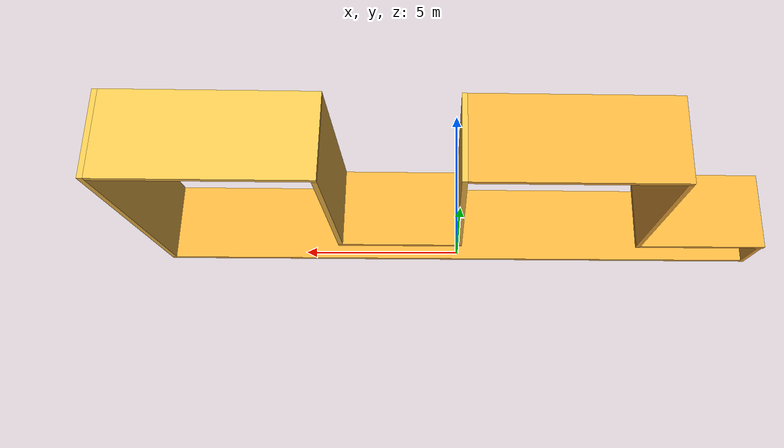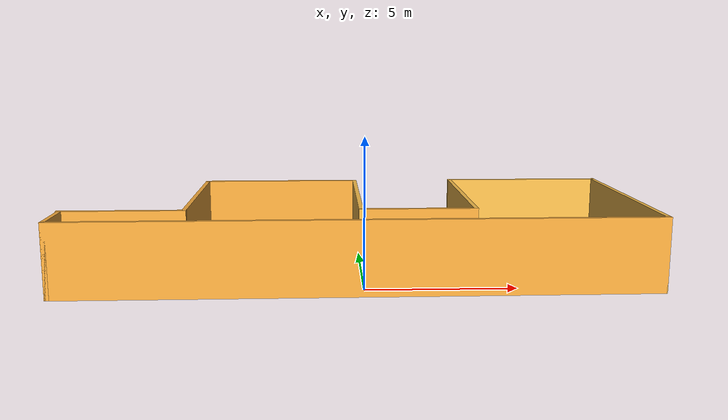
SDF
<?xml version='1.0'?>
<sdf version='1.7'>
  <model name='map4_level4'>
    <pose>-0.192035 3.19463 0 0 -0 0</pose>
    <link name='Wall_16'>
      <collision name='Wall_16_Collision'>
        <geometry>
          <box>
            <size>1.75 0.15 2.5</size>
          </box>
        </geometry>
        <pose>0 0 1.25 0 -0 0</pose>
      </collision>
      <visual name='Wall_16_Visual'>
        <pose>0 0 1.25 0 -0 0</pose>
        <geometry>
          <box>
            <size>1.75 0.15 2.5</size>
          </box>
        </geometry>
        <material>
          <script>
            <uri>file://media/materials/scripts/gazebo.material</uri>
            <name>Gazebo/Grey</name>
          </script>
          <ambient>0.988235 0.686275 0.243137 1</ambient>
        </material>
        <meta>
          <layer>0</layer>
        </meta>
      </visual>
      <pose>-9.775 -3.125 0 0 -0 -1.5708</pose>
    </link>
    <link name='Wall_17'>
      <collision name='Wall_17_Collision'>
        <geometry>
          <box>
            <size>19.75 0.15 2.5</size>
          </box>
        </geometry>
        <pose>0 0 1.25 0 -0 0</pose>
      </collision>
      <visual name='Wall_17_Visual'>
        <pose>0 0 1.25 0 -0 0</pose>
        <geometry>
          <box>
            <size>19.75 0.15 2.5</size>
          </box>
        </geometry>
        <material>
          <script>
            <uri>file://media/materials/scripts/gazebo.material</uri>
            <name>Gazebo/Grey</name>
          </script>
          <ambient>0.988235 0.686275 0.243137 1</ambient>
        </material>
        <meta>
          <layer>0</layer>
        </meta>
      </visual>
      <pose>0.025 -3.925 0 0 -0 0</pose>
    </link>
    <link name='Wall_20'>
      <collision name='Wall_20_Collision'>
        <geometry>
          <box>
            <size>8 0.15 2.5</size>
          </box>
        </geometry>
        <pose>0 0 1.25 0 -0 0</pose>
      </collision>
      <visual name='Wall_20_Visual'>
        <pose>0 0 1.25 0 -0 0</pose>
        <geometry>
          <box>
            <size>8 0.15 2.5</size>
          </box>
        </geometry>
        <material>
          <script>
            <uri>file://media/materials/scripts/gazebo.material</uri>
            <name>Gazebo/Grey</name>
          </script>
          <ambient>1 0.764706 0.305882 1</ambient>
        </material>
        <meta>
          <layer>0</layer>
        </meta>
      </visual>
      <pose>9.825 -0 0 0 -0 1.5708</pose>
    </link>
    <link name='Wall_21'>
      <collision name='Wall_21_Collision'>
        <geometry>
          <box>
            <size>6 0.15 2.5</size>
          </box>
        </geometry>
        <pose>0 0 1.25 0 -0 0</pose>
      </collision>
      <visual name='Wall_21_Visual'>
        <pose>0 0 1.25 0 -0 0</pose>
        <geometry>
          <box>
            <size>6 0.15 2.5</size>
          </box>
        </geometry>
        <material>
          <script>
            <uri>file://media/materials/scripts/gazebo.material</uri>
            <name>Gazebo/Grey</name>
          </script>
          <ambient>1 0.764706 0.305882 1</ambient>
        </material>
        <meta>
          <layer>0</layer>
        </meta>
      </visual>
      <pose>6.9 3.925 0 0 -0 3.14159</pose>
    </link>
    <link name='Wall_22'>
      <collision name='Wall_22_Collision'>
        <geometry>
          <box>
            <size>6.25 0.15 2.5</size>
          </box>
        </geometry>
        <pose>0 0 1.25 0 -0 0</pose>
      </collision>
      <visual name='Wall_22_Visual'>
        <pose>0 0 1.25 0 -0 0</pose>
        <geometry>
          <box>
            <size>6.25 0.15 2.5</size>
          </box>
        </geometry>
        <material>
          <script>
            <uri>file://media/materials/scripts/gazebo.material</uri>
            <name>Gazebo/Grey</name>
          </script>
          <ambient>1 0.764706 0.305882 1</ambient>
        </material>
        <meta>
          <layer>0</layer>
        </meta>
      </visual>
      <pose>3.975 0.875 0 0 -0 -1.5708</pose>
    </link>
    <link name='Wall_23'>
      <collision name='Wall_23_Collision'>
        <geometry>
          <box>
            <size>4 0.15 2.5</size>
          </box>
        </geometry>
        <pose>0 0 1.25 0 -0 0</pose>
      </collision>
      <visual name='Wall_23_Visual'>
        <pose>0 0 1.25 0 -0 0</pose>
        <geometry>
          <box>
            <size>4 0.15 2.5</size>
          </box>
        </geometry>
        <material>
          <script>
            <uri>file://media/materials/scripts/gazebo.material</uri>
            <name>Gazebo/Grey</name>
          </script>
          <ambient>0.988235 0.686275 0.243137 1</ambient>
        </material>
        <meta>
          <layer>0</layer>
        </meta>
      </visual>
      <pose>2.05 -2.175 0 0 -0 3.14159</pose>
    </link>
    <link name='Wall_24'>
      <collision name='Wall_24_Collision'>
        <geometry>
          <box>
            <size>6.25 0.15 2.5</size>
          </box>
        </geometry>
        <pose>0 0 1.25 0 -0 0</pose>
      </collision>
      <visual name='Wall_24_Visual'>
        <pose>0 0 1.25 0 -0 0</pose>
        <geometry>
          <box>
            <size>6.25 0.15 2.5</size>
          </box>
        </geometry>
        <material>
          <script>
            <uri>file://media/materials/scripts/gazebo.material</uri>
            <name>Gazebo/Grey</name>
          </script>
          <ambient>1 0.764706 0.305882 1</ambient>
        </material>
        <meta>
          <layer>0</layer>
        </meta>
      </visual>
      <pose>0.125 0.875 0 0 -0 1.5708</pose>
    </link>
    <link name='Wall_25'>
      <collision name='Wall_25_Collision'>
        <geometry>
          <box>
            <size>6 0.15 2.5</size>
          </box>
        </geometry>
        <pose>0 0 1.25 0 -0 0</pose>
      </collision>
      <visual name='Wall_25_Visual'>
        <pose>0 0 1.25 0 -0 0</pose>
        <geometry>
          <box>
            <size>6 0.15 2.5</size>
          </box>
        </geometry>
        <material>
          <script>
            <uri>file://media/materials/scripts/gazebo.material</uri>
            <name>Gazebo/Grey</name>
          </script>
          <ambient>0.988235 0.686275 0.243137 1</ambient>
        </material>
        <meta>
          <layer>0</layer>
        </meta>
      </visual>
      <pose>-2.8 3.925 0 0 -0 3.14159</pose>
    </link>
    <link name='Wall_26'>
      <collision name='Wall_26_Collision'>
        <geometry>
          <box>
            <size>6.25 0.15 2.5</size>
          </box>
        </geometry>
        <pose>0 0 1.25 0 -0 0</pose>
      </collision>
      <visual name='Wall_26_Visual'>
        <pose>0 0 1.25 0 -0 0</pose>
        <geometry>
          <box>
            <size>6.25 0.15 2.5</size>
          </box>
        </geometry>
        <material>
          <script>
            <uri>file://media/materials/scripts/gazebo.material</uri>
            <name>Gazebo/Grey</name>
          </script>
          <ambient>0.988235 0.686275 0.243137 1</ambient>
        </material>
        <meta>
          <layer>0</layer>
        </meta>
      </visual>
      <pose>-5.725 0.875 0 0 -0 -1.5708</pose>
    </link>
    <link name='Wall_27'>
      <collision name='Wall_27_Collision'>
        <geometry>
          <box>
            <size>4.25 0.15 2.5</size>
          </box>
        </geometry>
        <pose>0 0 1.25 0 -0 0</pose>
      </collision>
      <visual name='Wall_27_Visual'>
        <pose>0 0 1.25 0 -0 0</pose>
        <geometry>
          <box>
            <size>4.25 0.15 2.5</size>
          </box>
        </geometry>
        <material>
          <script>
            <uri>file://media/materials/scripts/gazebo.material</uri>
            <name>Gazebo/Grey</name>
          </script>
          <ambient>0.988235 0.686275 0.243137 1</ambient>
        </material>
        <meta>
          <layer>0</layer>
        </meta>
      </visual>
      <pose>-7.775 -2.175 0 0 -0 3.14159</pose>
    </link>
    <static>1</static>
  </model>
</sdf>
